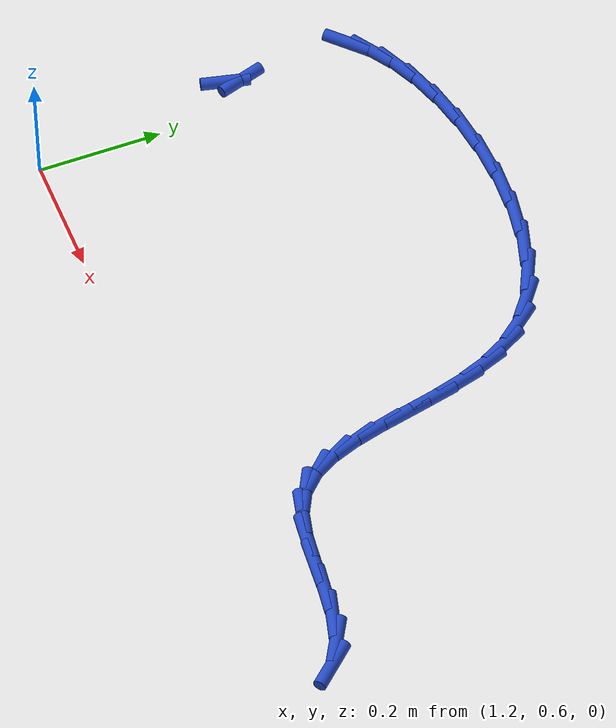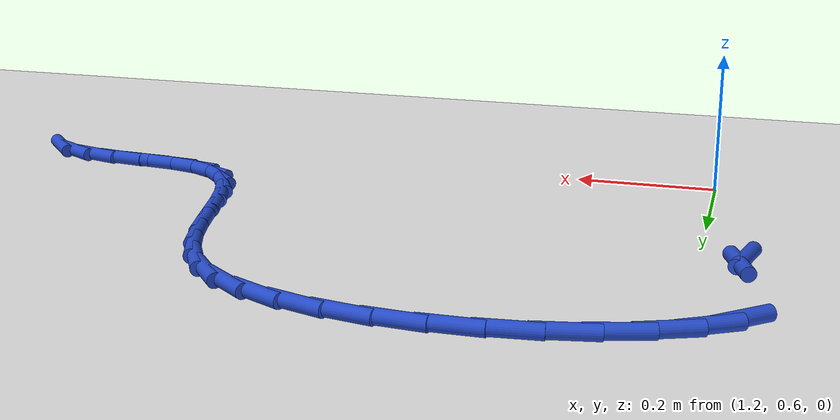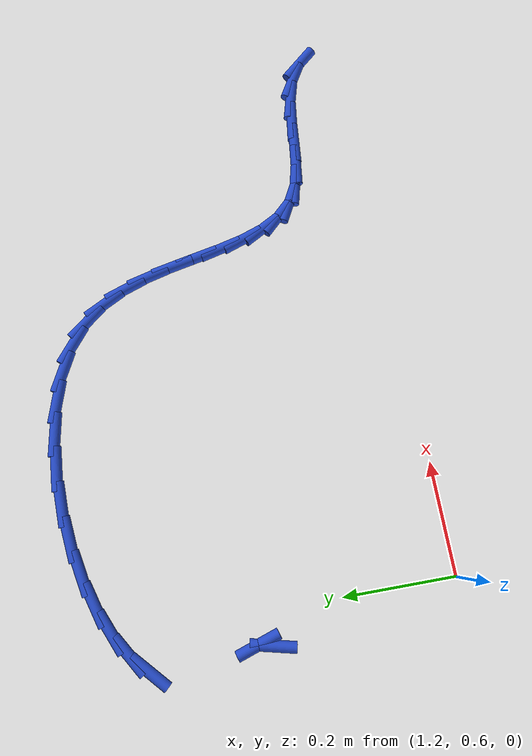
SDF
<sdf version="1.6">
 <world name="default">
  <model name="ground_plane">
   <static>1</static>
   <link name="link">
    <collision name="collision">
     <geometry><plane><normal>0 0 1</normal><size>100 100</size></plane></geometry>
     <surface><friction><ode><mu>100</mu><mu2>50</mu2></ode></friction></surface>
    </collision>
    <visual name="visual">
     <cast_shadows>0</cast_shadows>
     <geometry><plane><normal>0 0 1</normal><size>100 100</size></plane></geometry>
     <material>
      <script><uri>file://media/materials/scripts/gazebo.material</uri><name>Gazebo/WhiteGlow</name></script>
     </material>
    </visual>
   </link>
  </model>
  <model name="line">
   <link name="link_41">
    <pose>1.1452989395806117 0.9315237605993534 0.01 0 1.57 1.340390361876612</pose>
    <collision name="collision">
     <geometry><cylinder><radius>0.01</radius><length>0.08</length></cylinder></geometry>
    </collision>
    <visual name="visual">
     <material>
      <script><name>Gazebo/Blue</name><uri>file://media/materials/scripts/gazebo.material</uri></script>
     </material>
     <geometry><cylinder><radius>0.01</radius><length>0.08</length></cylinder></geometry>
    </visual>
   </link>
   <link name="link_42">
    <pose>1.151021366749847 0.9559189839654828 0.01 0 1.57 -1.2582821820882537</pose>
    <collision name="collision">
     <geometry><cylinder><radius>0.01</radius><length>0.08</length></cylinder></geometry>
    </collision>
    <visual name="visual">
     <material>
      <script><name>Gazebo/Blue</name><uri>file://media/materials/scripts/gazebo.material</uri></script>
     </material>
     <geometry><cylinder><radius>0.01</radius><length>0.08</length></cylinder></geometry>
    </visual>
   </link>
   <link name="link_47">
    <pose>1.1402710297754832 1.1425182559331322 0.01 0 1.57 0.7541980252064904</pose>
    <collision name="collision">
     <geometry><cylinder><radius>0.01</radius><length>0.08</length></cylinder></geometry>
    </collision>
    <visual name="visual">
     <material>
      <script><name>Gazebo/Blue</name><uri>file://media/materials/scripts/gazebo.material</uri></script>
     </material>
     <geometry><cylinder><radius>0.01</radius><length>0.08</length></cylinder></geometry>
    </visual>
   </link>
   <link name="link_48">
    <pose>1.1720706718927707 1.172393023321573 0.01 0 1.57 0.557694824736903</pose>
    <collision name="collision">
     <geometry><cylinder><radius>0.01</radius><length>0.08</length></cylinder></geometry>
    </collision>
    <visual name="visual">
     <material>
      <script><name>Gazebo/Blue</name><uri>file://media/materials/scripts/gazebo.material</uri></script>
     </material>
     <geometry><cylinder><radius>0.01</radius><length>0.08</length></cylinder></geometry>
    </visual>
   </link>
   <link name="link_49">
    <pose>1.2134880473407668 1.198226817320323 0.01 0 1.57 0.41177049169611074</pose>
    <collision name="collision">
     <geometry><cylinder><radius>0.01</radius><length>0.08</length></cylinder></geometry>
    </collision>
    <visual name="visual">
     <material>
      <script><name>Gazebo/Blue</name><uri>file://media/materials/scripts/gazebo.material</uri></script>
     </material>
     <geometry><cylinder><radius>0.01</radius><length>0.08</length></cylinder></geometry>
    </visual>
   </link>
   <link name="link_50">
    <pose>1.2627194881090427 1.219728047122585 0.01 0 1.57 0.2965064750438356</pose>
    <collision name="collision">
     <geometry><cylinder><radius>0.01</radius><length>0.08</length></cylinder></geometry>
    </collision>
    <visual name="visual">
     <material>
      <script><name>Gazebo/Blue</name><uri>file://media/materials/scripts/gazebo.material</uri></script>
     </material>
     <geometry><cylinder><radius>0.01</radius><length>0.08</length></cylinder></geometry>
    </visual>
   </link>
   <link name="link_51">
    <pose>1.3179613261871679 1.2366051219215604 0.01 0 1.57 0.19855362124217077</pose>
    <collision name="collision">
     <geometry><cylinder><radius>0.01</radius><length>0.08</length></cylinder></geometry>
    </collision>
    <visual name="visual">
     <material>
      <script><name>Gazebo/Blue</name><uri>file://media/materials/scripts/gazebo.material</uri></script>
     </material>
     <geometry><cylinder><radius>0.01</radius><length>0.08</length></cylinder></geometry>
    </visual>
   </link>
   <link name="link_52">
    <pose>1.3774098935647132 1.2485664509104515 0.01 0 1.57 0.10876573950773355</pose>
    <collision name="collision">
     <geometry><cylinder><radius>0.01</radius><length>0.08</length></cylinder></geometry>
    </collision>
    <visual name="visual">
     <material>
      <script><name>Gazebo/Blue</name><uri>file://media/materials/scripts/gazebo.material</uri></script>
     </material>
     <geometry><cylinder><radius>0.01</radius><length>0.08</length></cylinder></geometry>
    </visual>
   </link>
   <link name="link_53">
    <pose>1.439261522231247 1.255320443282459 0.01 0 1.57 0.02009408308451766</pose>
    <collision name="collision">
     <geometry><cylinder><radius>0.01</radius><length>0.08</length></cylinder></geometry>
    </collision>
    <visual name="visual">
     <material>
      <script><name>Gazebo/Blue</name><uri>file://media/materials/scripts/gazebo.material</uri></script>
     </material>
     <geometry><cylinder><radius>0.01</radius><length>0.08</length></cylinder></geometry>
    </visual>
   </link>
   <link name="link_54">
    <pose>1.5017125441763417 1.2565755082307852 0.01 0 1.57 -0.0739172327099798</pose>
    <collision name="collision">
     <geometry><cylinder><radius>0.01</radius><length>0.08</length></cylinder></geometry>
    </collision>
    <visual name="visual">
     <material>
      <script><name>Gazebo/Blue</name><uri>file://media/materials/scripts/gazebo.material</uri></script>
     </material>
     <geometry><cylinder><radius>0.01</radius><length>0.08</length></cylinder></geometry>
    </visual>
   </link>
   <link name="link_55">
    <pose>1.5629592913895667 1.2520400549486321 0.01 0 1.57 -0.18033030093902777</pose>
    <collision name="collision">
     <geometry><cylinder><radius>0.01</radius><length>0.08</length></cylinder></geometry>
    </collision>
    <visual name="visual">
     <material>
      <script><name>Gazebo/Blue</name><uri>file://media/materials/scripts/gazebo.material</uri></script>
     </material>
     <geometry><cylinder><radius>0.01</radius><length>0.08</length></cylinder></geometry>
    </visual>
   </link>
   <link name="link_56">
    <pose>1.621198095860491 1.2414224926292015 0.01 0 1.57 -0.30791171388644833</pose>
    <collision name="collision">
     <geometry><cylinder><radius>0.01</radius><length>0.08</length></cylinder></geometry>
    </collision>
    <visual name="visual">
     <material>
      <script><name>Gazebo/Blue</name><uri>file://media/materials/scripts/gazebo.material</uri></script>
     </material>
     <geometry><cylinder><radius>0.01</radius><length>0.08</length></cylinder></geometry>
    </visual>
   </link>
   <link name="link_57">
    <pose>1.6746252895786862 1.2244312304656946 0.01 0 1.57 -0.4679210229439961</pose>
    <collision name="collision">
     <geometry><cylinder><radius>0.01</radius><length>0.08</length></cylinder></geometry>
    </collision>
    <visual name="visual">
     <material>
      <script><name>Gazebo/Blue</name><uri>file://media/materials/scripts/gazebo.material</uri></script>
     </material>
     <geometry><cylinder><radius>0.01</radius><length>0.08</length></cylinder></geometry>
    </visual>
   </link>
   <link name="link_58">
    <pose>1.7214372045337218 1.2007746776513133 0.01 0 1.57 -0.6728107091520963</pose>
    <collision name="collision">
     <geometry><cylinder><radius>0.01</radius><length>0.08</length></cylinder></geometry>
    </collision>
    <visual name="visual">
     <material>
      <script><name>Gazebo/Blue</name><uri>file://media/materials/scripts/gazebo.material</uri></script>
     </material>
     <geometry><cylinder><radius>0.01</radius><length>0.08</length></cylinder></geometry>
    </visual>
   </link>
   <link name="link_59">
    <pose>1.7598456325187677 1.1701693329907057 0.01 0 1.57 -0.9011435893548</pose>
    <collision name="collision">
     <geometry><cylinder><radius>0.01</radius><length>0.08</length></cylinder></geometry>
    </collision>
    <visual name="visual">
     <material>
      <script><name>Gazebo/Blue</name><uri>file://media/materials/scripts/gazebo.material</uri></script>
     </material>
     <geometry><cylinder><radius>0.01</radius><length>0.08</length></cylinder></geometry>
    </visual>
   </link>
   <link name="link_60">
    <pose>1.7892919174192368 1.1329750798317935 0.01 0 1.57 -1.0908865986088185</pose>
    <collision name="collision">
     <geometry><cylinder><radius>0.01</radius><length>0.08</length></cylinder></geometry>
    </collision>
    <visual name="visual">
     <material>
      <script><name>Gazebo/Blue</name><uri>file://media/materials/scripts/gazebo.material</uri></script>
     </material>
     <geometry><cylinder><radius>0.01</radius><length>0.08</length></cylinder></geometry>
    </visual>
   </link>
   <link name="link_61">
    <pose>1.811320710841849 1.090652393913972 0.01 0 1.57 -1.228247749188316</pose>
    <collision name="collision">
     <geometry><cylinder><radius>0.01</radius><length>0.08</length></cylinder></geometry>
    </collision>
    <visual name="visual">
     <material>
      <script><name>Gazebo/Blue</name><uri>file://media/materials/scripts/gazebo.material</uri></script>
     </material>
     <geometry><cylinder><radius>0.01</radius><length>0.08</length></cylinder></geometry>
    </visual>
   </link>
   <link name="link_62">
    <pose>1.8276828242571124 1.0447696277153629 0.01 0 1.57 -1.3164502512299165</pose>
    <collision name="collision">
     <geometry><cylinder><radius>0.01</radius><length>0.08</length></cylinder></geometry>
    </collision>
    <visual name="visual">
     <material>
      <script><name>Gazebo/Blue</name><uri>file://media/materials/scripts/gazebo.material</uri></script>
     </material>
     <geometry><cylinder><radius>0.01</radius><length>0.08</length></cylinder></geometry>
    </visual>
   </link>
   <link name="link_63">
    <pose>1.8401290691355328 0.9968951337140868 0.01 0 1.57 -1.3610565429840256</pose>
    <collision name="collision">
     <geometry><cylinder><radius>0.01</radius><length>0.08</length></cylinder></geometry>
    </collision>
    <visual name="visual">
     <material>
      <script><name>Gazebo/Blue</name><uri>file://media/materials/scripts/gazebo.material</uri></script>
     </material>
     <geometry><cylinder><radius>0.01</radius><length>0.08</length></cylinder></geometry>
    </visual>
   </link>
   <link name="link_64">
    <pose>1.8504102569476186 0.948597264388264 0.01 0 1.57 -1.364518508799038</pose>
    <collision name="collision">
     <geometry><cylinder><radius>0.01</radius><length>0.08</length></cylinder></geometry>
    </collision>
    <visual name="visual">
     <material>
      <script><name>Gazebo/Blue</name><uri>file://media/materials/scripts/gazebo.material</uri></script>
     </material>
     <geometry><cylinder><radius>0.01</radius><length>0.08</length></cylinder></geometry>
    </visual>
   </link>
   <link name="link_65">
    <pose>1.8602771991638762 0.9014443722160153 0.01 0 1.57 -1.3238359434699933</pose>
    <collision name="collision">
     <geometry><cylinder><radius>0.01</radius><length>0.08</length></cylinder></geometry>
    </collision>
    <visual name="visual">
     <material>
      <script><name>Gazebo/Blue</name><uri>file://media/materials/scripts/gazebo.material</uri></script>
     </material>
     <geometry><cylinder><radius>0.01</radius><length>0.08</length></cylinder></geometry>
    </visual>
   </link>
   <link name="link_66">
    <pose>1.8714807072548132 0.8570048096754627 0.01 0 1.57 -1.2289039085841955</pose>
    <collision name="collision">
     <geometry><cylinder><radius>0.01</radius><length>0.08</length></cylinder></geometry>
    </collision>
    <visual name="visual">
     <material>
      <script><name>Gazebo/Blue</name><uri>file://media/materials/scripts/gazebo.material</uri></script>
     </material>
     <geometry><cylinder><radius>0.01</radius><length>0.08</length></cylinder></geometry>
    </visual>
   </link>
   <link name="link_67">
    <pose>1.8857715926909366 0.8168469292447254 0.01 0 1.57 -1.0621587176546652</pose>
    <collision name="collision">
     <geometry><cylinder><radius>0.01</radius><length>0.08</length></cylinder></geometry>
    </collision>
    <visual name="visual">
     <material>
      <script><name>Gazebo/Blue</name><uri>file://media/materials/scripts/gazebo.material</uri></script>
     </material>
     <geometry><cylinder><radius>0.01</radius><length>0.08</length></cylinder></geometry>
    </visual>
   </link>
   <link name="link_68">
    <pose>1.904900666942753 0.782539083401925 0.01 0 1.57 -0.807660957969916</pose>
    <collision name="collision">
     <geometry><cylinder><radius>0.01</radius><length>0.08</length></cylinder></geometry>
    </collision>
    <visual name="visual">
     <material>
      <script><name>Gazebo/Blue</name><uri>file://media/materials/scripts/gazebo.material</uri></script>
     </material>
     <geometry><cylinder><radius>0.01</radius><length>0.08</length></cylinder></geometry>
    </visual>
   </link>
   <link name="link_69">
    <pose>1.9306187414807705 0.7556496246251824 0.01 0 1.57 -0.48802679896197537</pose>
    <collision name="collision">
     <geometry><cylinder><radius>0.01</radius><length>0.08</length></cylinder></geometry>
    </collision>
    <visual name="visual">
     <material>
      <script><name>Gazebo/Blue</name><uri>file://media/materials/scripts/gazebo.material</uri></script>
     </material>
     <geometry><cylinder><radius>0.01</radius><length>0.08</length></cylinder></geometry>
    </visual>
   </link>
   <link name="link_70">
    <pose>1.9645635947920472 0.7376297879155258 0.01 0 1.57 -0.23938601392296058</pose>
    <collision name="collision">
     <geometry><cylinder><radius>0.01</radius><length>0.08</length></cylinder></geometry>
    </collision>
    <visual name="visual">
     <material>
      <script><name>Gazebo/Blue</name><uri>file://media/materials/scripts/gazebo.material</uri></script>
     </material>
     <geometry><cylinder><radius>0.01</radius><length>0.08</length></cylinder></geometry>
    </visual>
   </link>
   <link name="link_71">
    <pose>2.0060347718699947 0.7275080817451951 0.01 0 1.57 -0.11824654295361442</pose>
    <collision name="collision">
     <geometry><cylinder><radius>0.01</radius><length>0.08</length></cylinder></geometry>
    </collision>
    <visual name="visual">
     <material>
      <script><name>Gazebo/Blue</name><uri>file://media/materials/scripts/gazebo.material</uri></script>
     </material>
     <geometry><cylinder><radius>0.01</radius><length>0.08</length></cylinder></geometry>
    </visual>
   </link>
   <link name="link_72">
    <pose>2.0521302600290006 0.7220319027093968 0.01 0 1.57 -0.08718326155086654</pose>
    <collision name="collision">
     <geometry><cylinder><radius>0.01</radius><length>0.08</length></cylinder></geometry>
    </collision>
    <visual name="visual">
     <material>
      <script><name>Gazebo/Blue</name><uri>file://media/materials/scripts/gazebo.material</uri></script>
     </material>
     <geometry><cylinder><radius>0.01</radius><length>0.08</length></cylinder></geometry>
    </visual>
   </link>
   <link name="link_73">
    <pose>2.0998623798528127 0.7178598850699308 0.01 0 1.57 -0.13308276686661633</pose>
    <collision name="collision">
     <geometry><cylinder><radius>0.01</radius><length>0.08</length></cylinder></geometry>
    </collision>
    <visual name="visual">
     <material>
      <script><name>Gazebo/Blue</name><uri>file://media/materials/scripts/gazebo.material</uri></script>
     </material>
     <geometry><cylinder><radius>0.01</radius><length>0.08</length></cylinder></geometry>
    </visual>
   </link>
   <link name="link_74">
    <pose>2.1462434519251836 0.7116506630885971 0.01 0 1.57 -0.26894431824413173</pose>
    <collision name="collision">
     <geometry><cylinder><radius>0.01</radius><length>0.08</length></cylinder></geometry>
    </collision>
    <visual name="visual">
     <material>
      <script><name>Gazebo/Blue</name><uri>file://media/materials/scripts/gazebo.material</uri></script>
     </material>
     <geometry><cylinder><radius>0.01</radius><length>0.08</length></cylinder></geometry>
    </visual>
   </link>
   <link name="link_75">
    <pose>2.1882857968298635 0.700062871027195 0.01 0 1.57 -0.5270136536616948</pose>
    <collision name="collision">
     <geometry><cylinder><radius>0.01</radius><length>0.08</length></cylinder></geometry>
    </collision>
    <visual name="visual">
     <material>
      <script><name>Gazebo/Blue</name><uri>file://media/materials/scripts/gazebo.material</uri></script>
     </material>
     <geometry><cylinder><radius>0.01</radius><length>0.08</length></cylinder></geometry>
    </visual>
   </link>
   <link name="link_76">
    <pose>2.223057351811835 0.6798288701943163 0.01 0 1.57 -0.8494286628886704</pose>
    <collision name="collision">
     <geometry><cylinder><radius>0.01</radius><length>0.08</length></cylinder></geometry>
    </collision>
    <visual name="visual">
     <material>
      <script><name>Gazebo/Blue</name><uri>file://media/materials/scripts/gazebo.material</uri></script>
     </material>
     <geometry><cylinder><radius>0.01</radius><length>0.08</length></cylinder></geometry>
    </visual>
   </link>
  </model>
 </world>
</sdf>
